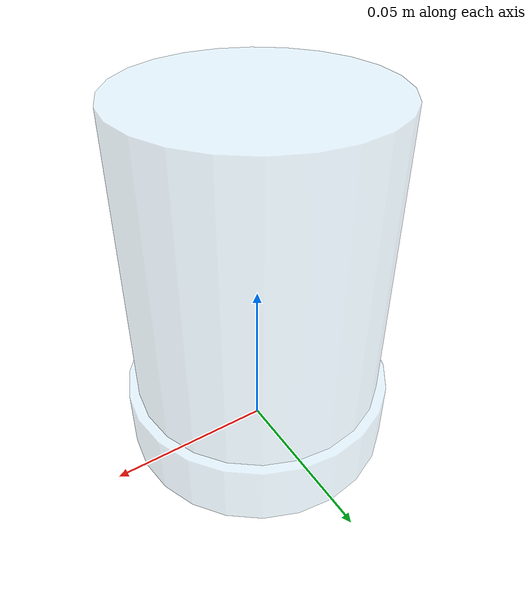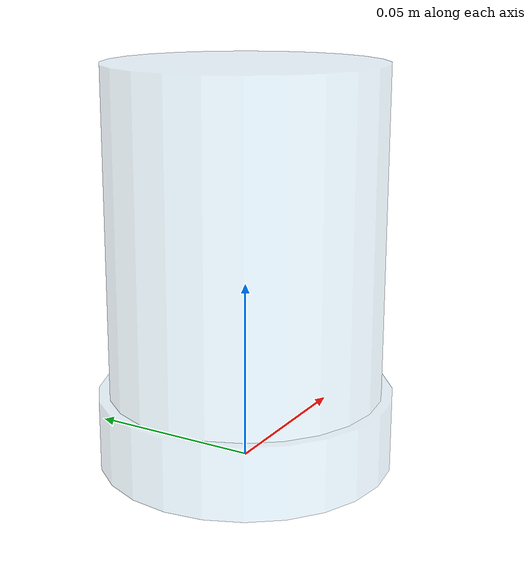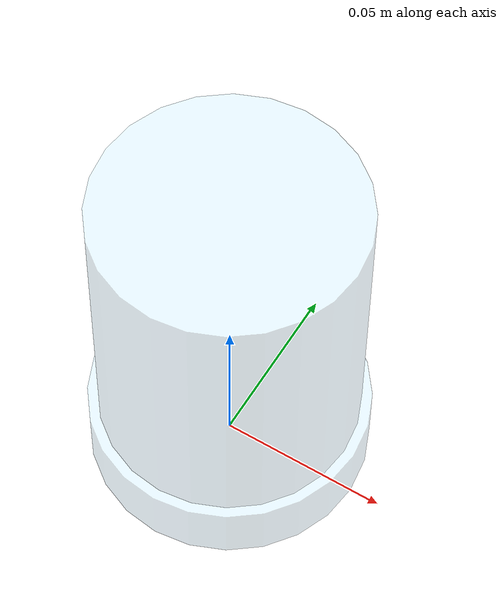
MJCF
<mujoco model="crystal_tumbler">
  <default>
    <geom condim="4" friction="0.9 0.01 0.001"/>
  </default>
  <asset>
    <material name="clear_glass" rgba="0.72 0.90 1.0 0.32"/>
    <material name="water_tint" rgba="0.55 0.75 0.95 0.30"/>
  </asset>
  <worldbody>
    <body name="crystal_tumbler_body" pos="0 0 0">
      <geom
        name="tumbler_glass_collision"
        type="cylinder"
        size="0.038 0.055"
        pos="0 0 0.055"
        mass="0.16"
        material="clear_glass"
      />
      <geom
        name="tumbler_heavy_base"
        type="cylinder"
        size="0.041 0.010"
        pos="0 0 0.010"
        mass="0.08"
        material="clear_glass"
      />
      <geom
        name="tumbler_water_visual"
        type="cylinder"
        size="0.032 0.032"
        pos="0 0 0.042"
        contype="0"
        conaffinity="0"
        mass="0.001"
        material="water_tint"
      />
    </body>
  </worldbody>
</mujoco>
